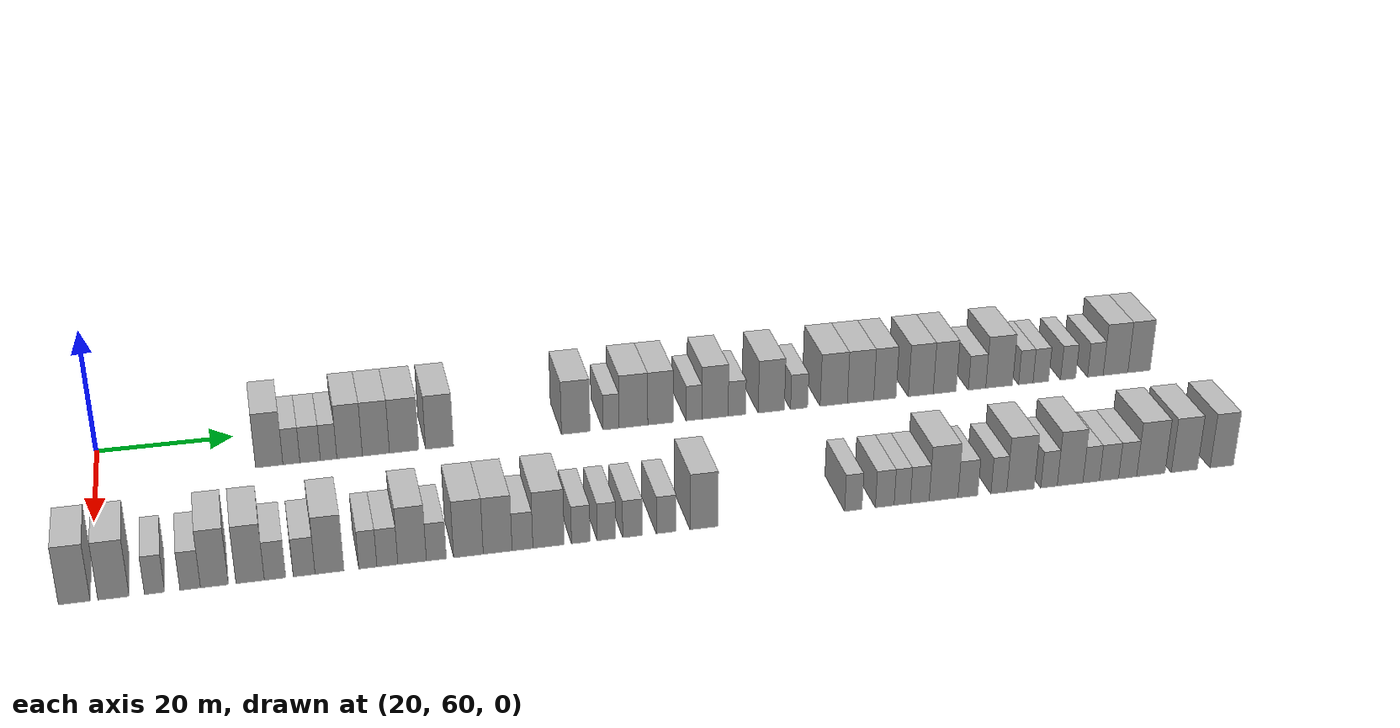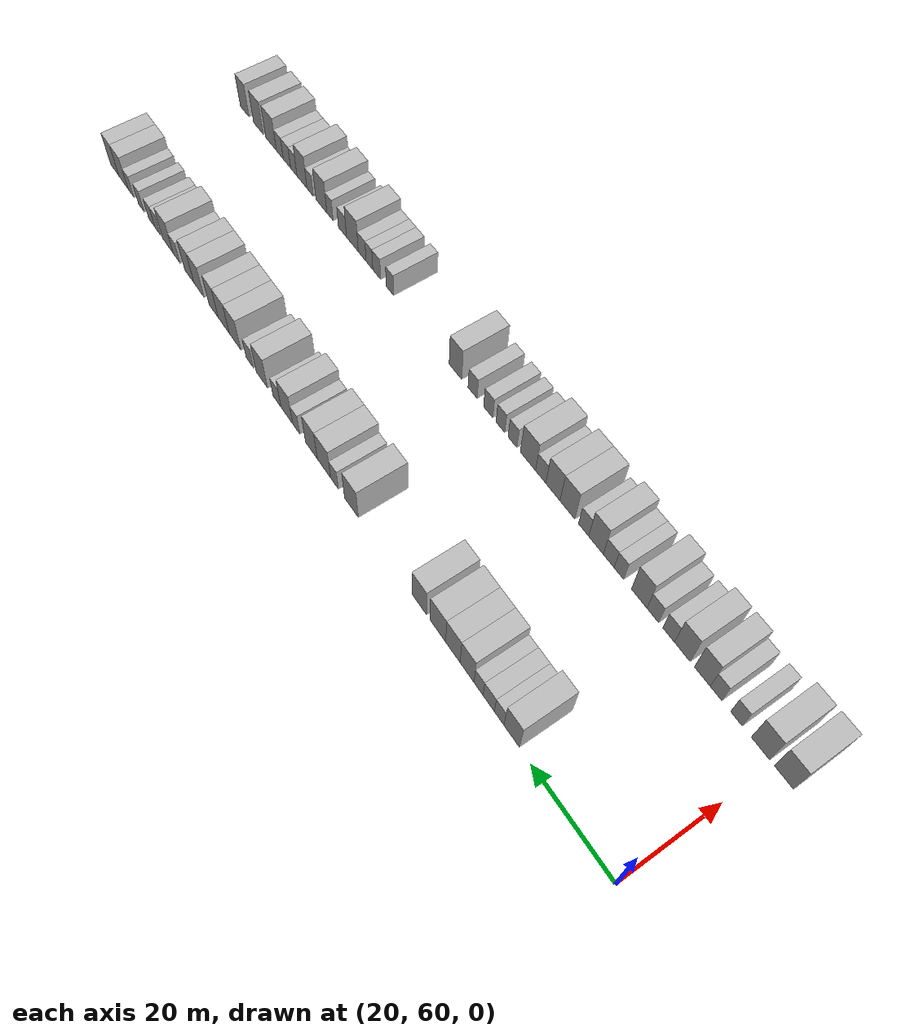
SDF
<sdf version="1.6">
 <world name="default">
  <model name="building_66">
   <static>1</static>
   <pose>25.0000 84.9210 0 0.000000 0.000000 0.000000</pose>
   <link name="link">
    <pose>0 0 4.50 0 0 0</pose>
    <collision name="collision"><geometry><box><size>10.0000 3.9785 9.0000</size></box></geometry></collision>
    <visual name="visual">
     <cast_shadows>0</cast_shadows>
     <geometry><box><size>10.0000 3.9785 9.0000</size></box></geometry>
     <material>
      <script>
       <uri>model://HANNAS_wall/materials/scripts</uri>
       <uri>model://HANNAS_wall/materials/textures</uri>
       <name>vrc/HANNAS_wall</name>
      </script>
     </material>
    </visual>
   </link>
  </model>
  <model name="building_67">
   <static>1</static>
   <pose>25.0000 88.1541 0 0.000000 0.000000 0.000000</pose>
   <link name="link">
    <pose>0 0 3.00 0 0 0</pose>
    <collision name="collision"><geometry><box><size>10.0000 2.4878 6.0000</size></box></geometry></collision>
    <visual name="visual">
     <cast_shadows>0</cast_shadows>
     <geometry><box><size>10.0000 2.4878 6.0000</size></box></geometry>
     <material>
      <script>
       <uri>model://HANNAS_wall/materials/scripts</uri>
       <uri>model://HANNAS_wall/materials/textures</uri>
       <name>vrc/HANNAS_wall</name>
      </script>
     </material>
    </visual>
   </link>
  </model>
  <model name="building_68">
   <static>1</static>
   <pose>25.0000 90.8943 0 0.000000 0.000000 0.000000</pose>
   <link name="link">
    <pose>0 0 3.00 0 0 0</pose>
    <collision name="collision"><geometry><box><size>10.0000 2.9925 6.0000</size></box></geometry></collision>
    <visual name="visual">
     <cast_shadows>0</cast_shadows>
     <geometry><box><size>10.0000 2.9925 6.0000</size></box></geometry>
     <material>
      <script>
       <uri>model://HANNAS_wall/materials/scripts</uri>
       <uri>model://HANNAS_wall/materials/textures</uri>
       <name>vrc/HANNAS_wall</name>
      </script>
     </material>
    </visual>
   </link>
  </model>
  <model name="building_69">
   <static>1</static>
   <pose>25.0000 93.6027 0 0.000000 0.000000 0.000000</pose>
   <link name="link">
    <pose>0 0 3.00 0 0 0</pose>
    <collision name="collision"><geometry><box><size>10.0000 2.4242 6.0000</size></box></geometry></collision>
    <visual name="visual">
     <cast_shadows>0</cast_shadows>
     <geometry><box><size>10.0000 2.4242 6.0000</size></box></geometry>
     <material>
      <script>
       <uri>model://HANNAS_wall/materials/scripts</uri>
       <uri>model://HANNAS_wall/materials/textures</uri>
       <name>vrc/HANNAS_wall</name>
      </script>
     </material>
    </visual>
   </link>
  </model>
  <model name="building_70">
   <static>1</static>
   <pose>25.0000 96.6988 0 0.000000 0.000000 0.000000</pose>
   <link name="link">
    <pose>0 0 4.50 0 0 0</pose>
    <collision name="collision"><geometry><box><size>10.0000 3.7680 9.0000</size></box></geometry></collision>
    <visual name="visual">
     <cast_shadows>0</cast_shadows>
     <geometry><box><size>10.0000 3.7680 9.0000</size></box></geometry>
     <material>
      <script>
       <uri>model://HANNAS_wall/materials/scripts</uri>
       <uri>model://HANNAS_wall/materials/textures</uri>
       <name>vrc/HANNAS_wall</name>
      </script>
     </material>
    </visual>
   </link>
  </model>
  <model name="building_71">
   <static>1</static>
   <pose>25.0000 100.5900 0 0.000000 0.000000 0.000000</pose>
   <link name="link">
    <pose>0 0 4.50 0 0 0</pose>
    <collision name="collision"><geometry><box><size>10.0000 4.0145 9.0000</size></box></geometry></collision>
    <visual name="visual">
     <cast_shadows>0</cast_shadows>
     <geometry><box><size>10.0000 4.0145 9.0000</size></box></geometry>
     <material>
      <script>
       <uri>model://HANNAS_wall/materials/scripts</uri>
       <uri>model://HANNAS_wall/materials/textures</uri>
       <name>vrc/HANNAS_wall</name>
      </script>
     </material>
    </visual>
   </link>
  </model>
  <model name="building_72">
   <static>1</static>
   <pose>25.0000 104.7903 0 0.000000 0.000000 0.000000</pose>
   <link name="link">
    <pose>0 0 4.50 0 0 0</pose>
    <collision name="collision"><geometry><box><size>10.0000 4.3861 9.0000</size></box></geometry></collision>
    <visual name="visual">
     <cast_shadows>0</cast_shadows>
     <geometry><box><size>10.0000 4.3861 9.0000</size></box></geometry>
     <material>
      <script>
       <uri>model://HANNAS_wall/materials/scripts</uri>
       <uri>model://HANNAS_wall/materials/textures</uri>
       <name>vrc/HANNAS_wall</name>
      </script>
     </material>
    </visual>
   </link>
  </model>
  <model name="building_73">
   <static>1</static>
   <pose>25.0000 110.0732 0 0.000000 0.000000 0.000000</pose>
   <link name="link">
    <pose>0 0 4.50 0 0 0</pose>
    <collision name="collision"><geometry><box><size>10.0000 4.1797 9.0000</size></box></geometry></collision>
    <visual name="visual">
     <cast_shadows>0</cast_shadows>
     <geometry><box><size>10.0000 4.1797 9.0000</size></box></geometry>
     <material>
      <script>
       <uri>model://HANNAS_wall/materials/scripts</uri>
       <uri>model://HANNAS_wall/materials/textures</uri>
       <name>vrc/HANNAS_wall</name>
      </script>
     </material>
    </visual>
   </link>
  </model>
  <model name="building_74">
   <static>1</static>
   <pose>25.0000 130.7508 0 0.000000 0.000000 0.000000</pose>
   <link name="link">
    <pose>0 0 4.50 0 0 0</pose>
    <collision name="collision"><geometry><box><size>10.0000 4.3918 9.0000</size></box></geometry></collision>
    <visual name="visual">
     <cast_shadows>0</cast_shadows>
     <geometry><box><size>10.0000 4.3918 9.0000</size></box></geometry>
     <material>
      <script>
       <uri>model://HANNAS_wall/materials/scripts</uri>
       <uri>model://HANNAS_wall/materials/textures</uri>
       <name>vrc/HANNAS_wall</name>
      </script>
     </material>
    </visual>
   </link>
  </model>
  <model name="building_75">
   <static>1</static>
   <pose>25.0000 136.1969 0 0.000000 0.000000 0.000000</pose>
   <link name="link">
    <pose>0 0 3.00 0 0 0</pose>
    <collision name="collision"><geometry><box><size>10.0000 2.5005 6.0000</size></box></geometry></collision>
    <visual name="visual">
     <cast_shadows>0</cast_shadows>
     <geometry><box><size>10.0000 2.5005 6.0000</size></box></geometry>
     <material>
      <script>
       <uri>model://HANNAS_wall/materials/scripts</uri>
       <uri>model://HANNAS_wall/materials/textures</uri>
       <name>vrc/HANNAS_wall</name>
      </script>
     </material>
    </visual>
   </link>
  </model>
  <model name="building_76">
   <static>1</static>
   <pose>25.0000 139.6686 0 0.000000 0.000000 0.000000</pose>
   <link name="link">
    <pose>0 0 4.50 0 0 0</pose>
    <collision name="collision"><geometry><box><size>10.0000 4.4429 9.0000</size></box></geometry></collision>
    <visual name="visual">
     <cast_shadows>0</cast_shadows>
     <geometry><box><size>10.0000 4.4429 9.0000</size></box></geometry>
     <material>
      <script>
       <uri>model://HANNAS_wall/materials/scripts</uri>
       <uri>model://HANNAS_wall/materials/textures</uri>
       <name>vrc/HANNAS_wall</name>
      </script>
     </material>
    </visual>
   </link>
  </model>
  <model name="building_77">
   <static>1</static>
   <pose>25.0000 143.8794 0 0.000000 0.000000 0.000000</pose>
   <link name="link">
    <pose>0 0 4.50 0 0 0</pose>
    <collision name="collision"><geometry><box><size>10.0000 3.9786 9.0000</size></box></geometry></collision>
    <visual name="visual">
     <cast_shadows>0</cast_shadows>
     <geometry><box><size>10.0000 3.9786 9.0000</size></box></geometry>
     <material>
      <script>
       <uri>model://HANNAS_wall/materials/scripts</uri>
       <uri>model://HANNAS_wall/materials/textures</uri>
       <name>vrc/HANNAS_wall</name>
      </script>
     </material>
    </visual>
   </link>
  </model>
  <model name="building_78">
   <static>1</static>
   <pose>25.0000 149.0896 0 0.000000 0.000000 0.000000</pose>
   <link name="link">
    <pose>0 0 3.00 0 0 0</pose>
    <collision name="collision"><geometry><box><size>10.0000 2.4418 6.0000</size></box></geometry></collision>
    <visual name="visual">
     <cast_shadows>0</cast_shadows>
     <geometry><box><size>10.0000 2.4418 6.0000</size></box></geometry>
     <material>
      <script>
       <uri>model://HANNAS_wall/materials/scripts</uri>
       <uri>model://HANNAS_wall/materials/textures</uri>
       <name>vrc/HANNAS_wall</name>
      </script>
     </material>
    </visual>
   </link>
  </model>
  <model name="building_79">
   <static>1</static>
   <pose>25.0000 152.3868 0 0.000000 0.000000 0.000000</pose>
   <link name="link">
    <pose>0 0 4.50 0 0 0</pose>
    <collision name="collision"><geometry><box><size>10.0000 4.1527 9.0000</size></box></geometry></collision>
    <visual name="visual">
     <cast_shadows>0</cast_shadows>
     <geometry><box><size>10.0000 4.1527 9.0000</size></box></geometry>
     <material>
      <script>
       <uri>model://HANNAS_wall/materials/scripts</uri>
       <uri>model://HANNAS_wall/materials/textures</uri>
       <name>vrc/HANNAS_wall</name>
      </script>
     </material>
    </visual>
   </link>
  </model>
  <model name="building_80">
   <static>1</static>
   <pose>25.0000 155.8482 0 0.000000 0.000000 0.000000</pose>
   <link name="link">
    <pose>0 0 3.00 0 0 0</pose>
    <collision name="collision"><geometry><box><size>10.0000 2.7701 6.0000</size></box></geometry></collision>
    <visual name="visual">
     <cast_shadows>0</cast_shadows>
     <geometry><box><size>10.0000 2.7701 6.0000</size></box></geometry>
     <material>
      <script>
       <uri>model://HANNAS_wall/materials/scripts</uri>
       <uri>model://HANNAS_wall/materials/textures</uri>
       <name>vrc/HANNAS_wall</name>
      </script>
     </material>
    </visual>
   </link>
  </model>
  <model name="building_81">
   <static>1</static>
   <pose>25.0000 161.3114 0 0.000000 0.000000 0.000000</pose>
   <link name="link">
    <pose>0 0 4.50 0 0 0</pose>
    <collision name="collision"><geometry><box><size>10.0000 4.1562 9.0000</size></box></geometry></collision>
    <visual name="visual">
     <cast_shadows>0</cast_shadows>
     <geometry><box><size>10.0000 4.1562 9.0000</size></box></geometry>
     <material>
      <script>
       <uri>model://HANNAS_wall/materials/scripts</uri>
       <uri>model://HANNAS_wall/materials/textures</uri>
       <name>vrc/HANNAS_wall</name>
      </script>
     </material>
    </visual>
   </link>
  </model>
  <model name="building_82">
   <static>1</static>
   <pose>25.0000 165.7562 0 0.000000 0.000000 0.000000</pose>
   <link name="link">
    <pose>0 0 3.00 0 0 0</pose>
    <collision name="collision"><geometry><box><size>10.0000 2.7334 6.0000</size></box></geometry></collision>
    <visual name="visual">
     <cast_shadows>0</cast_shadows>
     <geometry><box><size>10.0000 2.7334 6.0000</size></box></geometry>
     <material>
      <script>
       <uri>model://HANNAS_wall/materials/scripts</uri>
       <uri>model://HANNAS_wall/materials/textures</uri>
       <name>vrc/HANNAS_wall</name>
      </script>
     </material>
    </visual>
   </link>
  </model>
  <model name="building_83">
   <static>1</static>
   <pose>25.0000 171.3114 0 0.000000 0.000000 0.000000</pose>
   <link name="link">
    <pose>0 0 4.50 0 0 0</pose>
    <collision name="collision"><geometry><box><size>10.0000 4.3769 9.0000</size></box></geometry></collision>
    <visual name="visual">
     <cast_shadows>0</cast_shadows>
     <geometry><box><size>10.0000 4.3769 9.0000</size></box></geometry>
     <material>
      <script>
       <uri>model://HANNAS_wall/materials/scripts</uri>
       <uri>model://HANNAS_wall/materials/textures</uri>
       <name>vrc/HANNAS_wall</name>
      </script>
     </material>
    </visual>
   </link>
  </model>
  <model name="building_84">
   <static>1</static>
   <pose>25.0000 175.6330 0 0.000000 0.000000 0.000000</pose>
   <link name="link">
    <pose>0 0 4.50 0 0 0</pose>
    <collision name="collision"><geometry><box><size>10.0000 4.2664 9.0000</size></box></geometry></collision>
    <visual name="visual">
     <cast_shadows>0</cast_shadows>
     <geometry><box><size>10.0000 4.2664 9.0000</size></box></geometry>
     <material>
      <script>
       <uri>model://HANNAS_wall/materials/scripts</uri>
       <uri>model://HANNAS_wall/materials/textures</uri>
       <name>vrc/HANNAS_wall</name>
      </script>
     </material>
    </visual>
   </link>
  </model>
  <model name="building_85">
   <static>1</static>
   <pose>25.0000 179.5804 0 0.000000 0.000000 0.000000</pose>
   <link name="link">
    <pose>0 0 4.50 0 0 0</pose>
    <collision name="collision"><geometry><box><size>10.0000 3.6284 9.0000</size></box></geometry></collision>
    <visual name="visual">
     <cast_shadows>0</cast_shadows>
     <geometry><box><size>10.0000 3.6284 9.0000</size></box></geometry>
     <material>
      <script>
       <uri>model://HANNAS_wall/materials/scripts</uri>
       <uri>model://HANNAS_wall/materials/textures</uri>
       <name>vrc/HANNAS_wall</name>
      </script>
     </material>
    </visual>
   </link>
  </model>
  <model name="building_86">
   <static>1</static>
   <pose>25.0000 185.4361 0 0.000000 0.000000 0.000000</pose>
   <link name="link">
    <pose>0 0 4.50 0 0 0</pose>
    <collision name="collision"><geometry><box><size>10.0000 4.0831 9.0000</size></box></geometry></collision>
    <visual name="visual">
     <cast_shadows>0</cast_shadows>
     <geometry><box><size>10.0000 4.0831 9.0000</size></box></geometry>
     <material>
      <script>
       <uri>model://HANNAS_wall/materials/scripts</uri>
       <uri>model://HANNAS_wall/materials/textures</uri>
       <name>vrc/HANNAS_wall</name>
      </script>
     </material>
    </visual>
   </link>
  </model>
  <model name="building_87">
   <static>1</static>
   <pose>25.0000 189.3608 0 0.000000 0.000000 0.000000</pose>
   <link name="link">
    <pose>0 0 4.50 0 0 0</pose>
    <collision name="collision"><geometry><box><size>10.0000 3.7663 9.0000</size></box></geometry></collision>
    <visual name="visual">
     <cast_shadows>0</cast_shadows>
     <geometry><box><size>10.0000 3.7663 9.0000</size></box></geometry>
     <material>
      <script>
       <uri>model://HANNAS_wall/materials/scripts</uri>
       <uri>model://HANNAS_wall/materials/textures</uri>
       <name>vrc/HANNAS_wall</name>
      </script>
     </material>
    </visual>
   </link>
  </model>
  <model name="building_88">
   <static>1</static>
   <pose>25.0000 194.6899 0 0.000000 0.000000 0.000000</pose>
   <link name="link">
    <pose>0 0 3.00 0 0 0</pose>
    <collision name="collision"><geometry><box><size>10.0000 2.8918 6.0000</size></box></geometry></collision>
    <visual name="visual">
     <cast_shadows>0</cast_shadows>
     <geometry><box><size>10.0000 2.8918 6.0000</size></box></geometry>
     <material>
      <script>
       <uri>model://HANNAS_wall/materials/scripts</uri>
       <uri>model://HANNAS_wall/materials/textures</uri>
       <name>vrc/HANNAS_wall</name>
      </script>
     </material>
    </visual>
   </link>
  </model>
  <model name="building_89">
   <static>1</static>
   <pose>25.0000 198.3590 0 0.000000 0.000000 0.000000</pose>
   <link name="link">
    <pose>0 0 4.50 0 0 0</pose>
    <collision name="collision"><geometry><box><size>10.0000 4.4465 9.0000</size></box></geometry></collision>
    <visual name="visual">
     <cast_shadows>0</cast_shadows>
     <geometry><box><size>10.0000 4.4465 9.0000</size></box></geometry>
     <material>
      <script>
       <uri>model://HANNAS_wall/materials/scripts</uri>
       <uri>model://HANNAS_wall/materials/textures</uri>
       <name>vrc/HANNAS_wall</name>
      </script>
     </material>
    </visual>
   </link>
  </model>
  <model name="building_90">
   <static>1</static>
   <pose>25.0000 202.7858 0 0.000000 0.000000 0.000000</pose>
   <link name="link">
    <pose>0 0 3.00 0 0 0</pose>
    <collision name="collision"><geometry><box><size>10.0000 2.4072 6.0000</size></box></geometry></collision>
    <visual name="visual">
     <cast_shadows>0</cast_shadows>
     <geometry><box><size>10.0000 2.4072 6.0000</size></box></geometry>
     <material>
      <script>
       <uri>model://HANNAS_wall/materials/scripts</uri>
       <uri>model://HANNAS_wall/materials/textures</uri>
       <name>vrc/HANNAS_wall</name>
      </script>
     </material>
    </visual>
   </link>
  </model>
  <model name="building_91">
   <static>1</static>
   <pose>25.0000 205.2989 0 0.000000 0.000000 0.000000</pose>
   <link name="link">
    <pose>0 0 3.00 0 0 0</pose>
    <collision name="collision"><geometry><box><size>10.0000 2.6191 6.0000</size></box></geometry></collision>
    <visual name="visual">
     <cast_shadows>0</cast_shadows>
     <geometry><box><size>10.0000 2.6191 6.0000</size></box></geometry>
     <material>
      <script>
       <uri>model://HANNAS_wall/materials/scripts</uri>
       <uri>model://HANNAS_wall/materials/textures</uri>
       <name>vrc/HANNAS_wall</name>
      </script>
     </material>
    </visual>
   </link>
  </model>
  <model name="building_92">
   <static>1</static>
   <pose>25.0000 209.8812 0 0.000000 0.000000 0.000000</pose>
   <link name="link">
    <pose>0 0 3.00 0 0 0</pose>
    <collision name="collision"><geometry><box><size>10.0000 2.5454 6.0000</size></box></geometry></collision>
    <visual name="visual">
     <cast_shadows>0</cast_shadows>
     <geometry><box><size>10.0000 2.5454 6.0000</size></box></geometry>
     <material>
      <script>
       <uri>model://HANNAS_wall/materials/scripts</uri>
       <uri>model://HANNAS_wall/materials/textures</uri>
       <name>vrc/HANNAS_wall</name>
      </script>
     </material>
    </visual>
   </link>
  </model>
  <model name="building_93">
   <static>1</static>
   <pose>25.0000 214.4726 0 0.000000 0.000000 0.000000</pose>
   <link name="link">
    <pose>0 0 3.00 0 0 0</pose>
    <collision name="collision"><geometry><box><size>10.0000 2.6375 6.0000</size></box></geometry></collision>
    <visual name="visual">
     <cast_shadows>0</cast_shadows>
     <geometry><box><size>10.0000 2.6375 6.0000</size></box></geometry>
     <material>
      <script>
       <uri>model://HANNAS_wall/materials/scripts</uri>
       <uri>model://HANNAS_wall/materials/textures</uri>
       <name>vrc/HANNAS_wall</name>
      </script>
     </material>
    </visual>
   </link>
  </model>
  <model name="building_94">
   <static>1</static>
   <pose>25.0000 217.8817 0 0.000000 0.000000 0.000000</pose>
   <link name="link">
    <pose>0 0 4.50 0 0 0</pose>
    <collision name="collision"><geometry><box><size>10.0000 4.1807 9.0000</size></box></geometry></collision>
    <visual name="visual">
     <cast_shadows>0</cast_shadows>
     <geometry><box><size>10.0000 4.1807 9.0000</size></box></geometry>
     <material>
      <script>
       <uri>model://HANNAS_wall/materials/scripts</uri>
       <uri>model://HANNAS_wall/materials/textures</uri>
       <name>vrc/HANNAS_wall</name>
      </script>
     </material>
    </visual>
   </link>
  </model>
  <model name="building_95">
   <static>1</static>
   <pose>25.0000 221.8728 0 0.000000 0.000000 0.000000</pose>
   <link name="link">
    <pose>0 0 4.50 0 0 0</pose>
    <collision name="collision"><geometry><box><size>10.0000 3.8014 9.0000</size></box></geometry></collision>
    <visual name="visual">
     <cast_shadows>0</cast_shadows>
     <geometry><box><size>10.0000 3.8014 9.0000</size></box></geometry>
     <material>
      <script>
       <uri>model://HANNAS_wall/materials/scripts</uri>
       <uri>model://HANNAS_wall/materials/textures</uri>
       <name>vrc/HANNAS_wall</name>
      </script>
     </material>
    </visual>
   </link>
  </model>
  <model name="building_167">
   <static>1</static>
   <pose>55.0000 57.6945 0 0.000000 0.000000 0.000000</pose>
   <link name="link">
    <pose>0 0 4.50 0 0 0</pose>
    <collision name="collision"><geometry><box><size>10.0000 4.1024 9.0000</size></box></geometry></collision>
    <visual name="visual">
     <cast_shadows>0</cast_shadows>
     <geometry><box><size>10.0000 4.1024 9.0000</size></box></geometry>
     <material>
      <script>
       <uri>model://HANNAS_wall/materials/scripts</uri>
       <uri>model://HANNAS_wall/materials/textures</uri>
       <name>vrc/HANNAS_wall</name>
      </script>
     </material>
    </visual>
   </link>
  </model>
  <model name="building_168">
   <static>1</static>
   <pose>55.0000 62.7787 0 0.000000 0.000000 0.000000</pose>
   <link name="link">
    <pose>0 0 4.50 0 0 0</pose>
    <collision name="collision"><geometry><box><size>10.0000 4.0661 9.0000</size></box></geometry></collision>
    <visual name="visual">
     <cast_shadows>0</cast_shadows>
     <geometry><box><size>10.0000 4.0661 9.0000</size></box></geometry>
     <material>
      <script>
       <uri>model://HANNAS_wall/materials/scripts</uri>
       <uri>model://HANNAS_wall/materials/textures</uri>
       <name>vrc/HANNAS_wall</name>
      </script>
     </material>
    </visual>
   </link>
  </model>
  <model name="building_169">
   <static>1</static>
   <pose>55.0000 68.1337 0 0.000000 0.000000 0.000000</pose>
   <link name="link">
    <pose>0 0 3.00 0 0 0</pose>
    <collision name="collision"><geometry><box><size>10.0000 2.6439 6.0000</size></box></geometry></collision>
    <visual name="visual">
     <cast_shadows>0</cast_shadows>
     <geometry><box><size>10.0000 2.6439 6.0000</size></box></geometry>
     <material>
      <script>
       <uri>model://HANNAS_wall/materials/scripts</uri>
       <uri>model://HANNAS_wall/materials/textures</uri>
       <name>vrc/HANNAS_wall</name>
      </script>
     </material>
    </visual>
   </link>
  </model>
  <model name="building_170">
   <static>1</static>
   <pose>55.0000 72.8062 0 0.000000 0.000000 0.000000</pose>
   <link name="link">
    <pose>0 0 3.00 0 0 0</pose>
    <collision name="collision"><geometry><box><size>10.0000 2.7010 6.0000</size></box></geometry></collision>
    <visual name="visual">
     <cast_shadows>0</cast_shadows>
     <geometry><box><size>10.0000 2.7010 6.0000</size></box></geometry>
     <material>
      <script>
       <uri>model://HANNAS_wall/materials/scripts</uri>
       <uri>model://HANNAS_wall/materials/textures</uri>
       <name>vrc/HANNAS_wall</name>
      </script>
     </material>
    </visual>
   </link>
  </model>
  <model name="building_171">
   <static>1</static>
   <pose>55.0000 76.0013 0 0.000000 0.000000 0.000000</pose>
   <link name="link">
    <pose>0 0 4.50 0 0 0</pose>
    <collision name="collision"><geometry><box><size>10.0000 3.6893 9.0000</size></box></geometry></collision>
    <visual name="visual">
     <cast_shadows>0</cast_shadows>
     <geometry><box><size>10.0000 3.6893 9.0000</size></box></geometry>
     <material>
      <script>
       <uri>model://HANNAS_wall/materials/scripts</uri>
       <uri>model://HANNAS_wall/materials/textures</uri>
       <name>vrc/HANNAS_wall</name>
      </script>
     </material>
    </visual>
   </link>
  </model>
  <model name="building_172">
   <static>1</static>
   <pose>55.0000 80.7335 0 0.000000 0.000000 0.000000</pose>
   <link name="link">
    <pose>0 0 4.50 0 0 0</pose>
    <collision name="collision"><geometry><box><size>10.0000 3.7750 9.0000</size></box></geometry></collision>
    <visual name="visual">
     <cast_shadows>0</cast_shadows>
     <geometry><box><size>10.0000 3.7750 9.0000</size></box></geometry>
     <material>
      <script>
       <uri>model://HANNAS_wall/materials/scripts</uri>
       <uri>model://HANNAS_wall/materials/textures</uri>
       <name>vrc/HANNAS_wall</name>
      </script>
     </material>
    </visual>
   </link>
  </model>
  <model name="building_173">
   <static>1</static>
   <pose>55.0000 84.0565 0 0.000000 0.000000 0.000000</pose>
   <link name="link">
    <pose>0 0 3.00 0 0 0</pose>
    <collision name="collision"><geometry><box><size>10.0000 2.8710 6.0000</size></box></geometry></collision>
    <visual name="visual">
     <cast_shadows>0</cast_shadows>
     <geometry><box><size>10.0000 2.8710 6.0000</size></box></geometry>
     <material>
      <script>
       <uri>model://HANNAS_wall/materials/scripts</uri>
       <uri>model://HANNAS_wall/materials/textures</uri>
       <name>vrc/HANNAS_wall</name>
      </script>
     </material>
    </visual>
   </link>
  </model>
  <model name="building_174">
   <static>1</static>
   <pose>55.0000 87.9522 0 0.000000 0.000000 0.000000</pose>
   <link name="link">
    <pose>0 0 3.00 0 0 0</pose>
    <collision name="collision"><geometry><box><size>10.0000 2.9206 6.0000</size></box></geometry></collision>
    <visual name="visual">
     <cast_shadows>0</cast_shadows>
     <geometry><box><size>10.0000 2.9206 6.0000</size></box></geometry>
     <material>
      <script>
       <uri>model://HANNAS_wall/materials/scripts</uri>
       <uri>model://HANNAS_wall/materials/textures</uri>
       <name>vrc/HANNAS_wall</name>
      </script>
     </material>
    </visual>
   </link>
  </model>
  <model name="building_175">
   <static>1</static>
   <pose>55.0000 91.3695 0 0.000000 0.000000 0.000000</pose>
   <link name="link">
    <pose>0 0 4.50 0 0 0</pose>
    <collision name="collision"><geometry><box><size>10.0000 3.9140 9.0000</size></box></geometry></collision>
    <visual name="visual">
     <cast_shadows>0</cast_shadows>
     <geometry><box><size>10.0000 3.9140 9.0000</size></box></geometry>
     <material>
      <script>
       <uri>model://HANNAS_wall/materials/scripts</uri>
       <uri>model://HANNAS_wall/materials/textures</uri>
       <name>vrc/HANNAS_wall</name>
      </script>
     </material>
    </visual>
   </link>
  </model>
  <model name="building_176">
   <static>1</static>
   <pose>55.0000 96.5517 0 0.000000 0.000000 0.000000</pose>
   <link name="link">
    <pose>0 0 3.00 0 0 0</pose>
    <collision name="collision"><geometry><box><size>10.0000 2.4503 6.0000</size></box></geometry></collision>
    <visual name="visual">
     <cast_shadows>0</cast_shadows>
     <geometry><box><size>10.0000 2.4503 6.0000</size></box></geometry>
     <material>
      <script>
       <uri>model://HANNAS_wall/materials/scripts</uri>
       <uri>model://HANNAS_wall/materials/textures</uri>
       <name>vrc/HANNAS_wall</name>
      </script>
     </material>
    </visual>
   </link>
  </model>
  <model name="building_177">
   <static>1</static>
   <pose>55.0000 99.2036 0 0.000000 0.000000 0.000000</pose>
   <link name="link">
    <pose>0 0 3.00 0 0 0</pose>
    <collision name="collision"><geometry><box><size>10.0000 2.8536 6.0000</size></box></geometry></collision>
    <visual name="visual">
     <cast_shadows>0</cast_shadows>
     <geometry><box><size>10.0000 2.8536 6.0000</size></box></geometry>
     <material>
      <script>
       <uri>model://HANNAS_wall/materials/scripts</uri>
       <uri>model://HANNAS_wall/materials/textures</uri>
       <name>vrc/HANNAS_wall</name>
      </script>
     </material>
    </visual>
   </link>
  </model>
  <model name="building_178">
   <static>1</static>
   <pose>55.0000 102.5852 0 0.000000 0.000000 0.000000</pose>
   <link name="link">
    <pose>0 0 4.50 0 0 0</pose>
    <collision name="collision"><geometry><box><size>10.0000 3.9094 9.0000</size></box></geometry></collision>
    <visual name="visual">
     <cast_shadows>0</cast_shadows>
     <geometry><box><size>10.0000 3.9094 9.0000</size></box></geometry>
     <material>
      <script>
       <uri>model://HANNAS_wall/materials/scripts</uri>
       <uri>model://HANNAS_wall/materials/textures</uri>
       <name>vrc/HANNAS_wall</name>
      </script>
     </material>
    </visual>
   </link>
  </model>
  <model name="building_179">
   <static>1</static>
   <pose>55.0000 105.9098 0 0.000000 0.000000 0.000000</pose>
   <link name="link">
    <pose>0 0 3.00 0 0 0</pose>
    <collision name="collision"><geometry><box><size>10.0000 2.7397 6.0000</size></box></geometry></collision>
    <visual name="visual">
     <cast_shadows>0</cast_shadows>
     <geometry><box><size>10.0000 2.7397 6.0000</size></box></geometry>
     <material>
      <script>
       <uri>model://HANNAS_wall/materials/scripts</uri>
       <uri>model://HANNAS_wall/materials/textures</uri>
       <name>vrc/HANNAS_wall</name>
      </script>
     </material>
    </visual>
   </link>
  </model>
  <model name="building_180">
   <static>1</static>
   <pose>55.0000 110.3261 0 0.000000 0.000000 0.000000</pose>
   <link name="link">
    <pose>0 0 4.50 0 0 0</pose>
    <collision name="collision"><geometry><box><size>10.0000 4.0930 9.0000</size></box></geometry></collision>
    <visual name="visual">
     <cast_shadows>0</cast_shadows>
     <geometry><box><size>10.0000 4.0930 9.0000</size></box></geometry>
     <material>
      <script>
       <uri>model://HANNAS_wall/materials/scripts</uri>
       <uri>model://HANNAS_wall/materials/textures</uri>
       <name>vrc/HANNAS_wall</name>
      </script>
     </material>
    </visual>
   </link>
  </model>
  <model name="building_181">
   <static>1</static>
   <pose>55.0000 114.3791 0 0.000000 0.000000 0.000000</pose>
   <link name="link">
    <pose>0 0 4.50 0 0 0</pose>
    <collision name="collision"><geometry><box><size>10.0000 4.0128 9.0000</size></box></geometry></collision>
    <visual name="visual">
     <cast_shadows>0</cast_shadows>
     <geometry><box><size>10.0000 4.0128 9.0000</size></box></geometry>
     <material>
      <script>
       <uri>model://HANNAS_wall/materials/scripts</uri>
       <uri>model://HANNAS_wall/materials/textures</uri>
       <name>vrc/HANNAS_wall</name>
      </script>
     </material>
    </visual>
   </link>
  </model>
  <model name="building_182">
   <static>1</static>
   <pose>55.0000 117.8353 0 0.000000 0.000000 0.000000</pose>
   <link name="link">
    <pose>0 0 3.00 0 0 0</pose>
    <collision name="collision"><geometry><box><size>10.0000 2.8996 6.0000</size></box></geometry></collision>
    <visual name="visual">
     <cast_shadows>0</cast_shadows>
     <geometry><box><size>10.0000 2.8996 6.0000</size></box></geometry>
     <material>
      <script>
       <uri>model://HANNAS_wall/materials/scripts</uri>
       <uri>model://HANNAS_wall/materials/textures</uri>
       <name>vrc/HANNAS_wall</name>
      </script>
     </material>
    </visual>
   </link>
  </model>
  <model name="building_183">
   <static>1</static>
   <pose>55.0000 121.4937 0 0.000000 0.000000 0.000000</pose>
   <link name="link">
    <pose>0 0 4.50 0 0 0</pose>
    <collision name="collision"><geometry><box><size>10.0000 4.4171 9.0000</size></box></geometry></collision>
    <visual name="visual">
     <cast_shadows>0</cast_shadows>
     <geometry><box><size>10.0000 4.4171 9.0000</size></box></geometry>
     <material>
      <script>
       <uri>model://HANNAS_wall/materials/scripts</uri>
       <uri>model://HANNAS_wall/materials/textures</uri>
       <name>vrc/HANNAS_wall</name>
      </script>
     </material>
    </visual>
   </link>
  </model>
  <model name="building_184">
   <static>1</static>
   <pose>55.0000 126.0156 0 0.000000 0.000000 0.000000</pose>
   <link name="link">
    <pose>0 0 3.00 0 0 0</pose>
    <collision name="collision"><geometry><box><size>10.0000 2.6268 6.0000</size></box></geometry></collision>
    <visual name="visual">
     <cast_shadows>0</cast_shadows>
     <geometry><box><size>10.0000 2.6268 6.0000</size></box></geometry>
     <material>
      <script>
       <uri>model://HANNAS_wall/materials/scripts</uri>
       <uri>model://HANNAS_wall/materials/textures</uri>
       <name>vrc/HANNAS_wall</name>
      </script>
     </material>
    </visual>
   </link>
  </model>
  <model name="building_185">
   <static>1</static>
   <pose>55.0000 129.6344 0 0.000000 0.000000 0.000000</pose>
   <link name="link">
    <pose>0 0 3.00 0 0 0</pose>
    <collision name="collision"><geometry><box><size>10.0000 2.6108 6.0000</size></box></geometry></collision>
    <visual name="visual">
     <cast_shadows>0</cast_shadows>
     <geometry><box><size>10.0000 2.6108 6.0000</size></box></geometry>
     <material>
      <script>
       <uri>model://HANNAS_wall/materials/scripts</uri>
       <uri>model://HANNAS_wall/materials/textures</uri>
       <name>vrc/HANNAS_wall</name>
      </script>
     </material>
    </visual>
   </link>
  </model>
  <model name="building_186">
   <static>1</static>
   <pose>55.0000 133.3300 0 0.000000 0.000000 0.000000</pose>
   <link name="link">
    <pose>0 0 3.00 0 0 0</pose>
    <collision name="collision"><geometry><box><size>10.0000 2.7804 6.0000</size></box></geometry></collision>
    <visual name="visual">
     <cast_shadows>0</cast_shadows>
     <geometry><box><size>10.0000 2.7804 6.0000</size></box></geometry>
     <material>
      <script>
       <uri>model://HANNAS_wall/materials/scripts</uri>
       <uri>model://HANNAS_wall/materials/textures</uri>
       <name>vrc/HANNAS_wall</name>
      </script>
     </material>
    </visual>
   </link>
  </model>
  <model name="building_187">
   <static>1</static>
   <pose>55.0000 138.1407 0 0.000000 0.000000 0.000000</pose>
   <link name="link">
    <pose>0 0 3.00 0 0 0</pose>
    <collision name="collision"><geometry><box><size>10.0000 2.8410 6.0000</size></box></geometry></collision>
    <visual name="visual">
     <cast_shadows>0</cast_shadows>
     <geometry><box><size>10.0000 2.8410 6.0000</size></box></geometry>
     <material>
      <script>
       <uri>model://HANNAS_wall/materials/scripts</uri>
       <uri>model://HANNAS_wall/materials/textures</uri>
       <name>vrc/HANNAS_wall</name>
      </script>
     </material>
    </visual>
   </link>
  </model>
  <model name="building_188">
   <static>1</static>
   <pose>55.0000 143.5503 0 0.000000 0.000000 0.000000</pose>
   <link name="link">
    <pose>0 0 4.50 0 0 0</pose>
    <collision name="collision"><geometry><box><size>10.0000 3.9782 9.0000</size></box></geometry></collision>
    <visual name="visual">
     <cast_shadows>0</cast_shadows>
     <geometry><box><size>10.0000 3.9782 9.0000</size></box></geometry>
     <material>
      <script>
       <uri>model://HANNAS_wall/materials/scripts</uri>
       <uri>model://HANNAS_wall/materials/textures</uri>
       <name>vrc/HANNAS_wall</name>
      </script>
     </material>
    </visual>
   </link>
  </model>
  <model name="building_189">
   <static>1</static>
   <pose>55.0000 165.3817 0 0.000000 0.000000 0.000000</pose>
   <link name="link">
    <pose>0 0 3.00 0 0 0</pose>
    <collision name="collision"><geometry><box><size>10.0000 2.5616 6.0000</size></box></geometry></collision>
    <visual name="visual">
     <cast_shadows>0</cast_shadows>
     <geometry><box><size>10.0000 2.5616 6.0000</size></box></geometry>
     <material>
      <script>
       <uri>model://HANNAS_wall/materials/scripts</uri>
       <uri>model://HANNAS_wall/materials/textures</uri>
       <name>vrc/HANNAS_wall</name>
      </script>
     </material>
    </visual>
   </link>
  </model>
  <model name="building_190">
   <static>1</static>
   <pose>55.0000 170.0568 0 0.000000 0.000000 0.000000</pose>
   <link name="link">
    <pose>0 0 3.00 0 0 0</pose>
    <collision name="collision"><geometry><box><size>10.0000 2.7886 6.0000</size></box></geometry></collision>
    <visual name="visual">
     <cast_shadows>0</cast_shadows>
     <geometry><box><size>10.0000 2.7886 6.0000</size></box></geometry>
     <material>
      <script>
       <uri>model://HANNAS_wall/materials/scripts</uri>
       <uri>model://HANNAS_wall/materials/textures</uri>
       <name>vrc/HANNAS_wall</name>
      </script>
     </material>
    </visual>
   </link>
  </model>
  <model name="building_191">
   <static>1</static>
   <pose>55.0000 172.6611 0 0.000000 0.000000 0.000000</pose>
   <link name="link">
    <pose>0 0 3.00 0 0 0</pose>
    <collision name="collision"><geometry><box><size>10.0000 2.4199 6.0000</size></box></geometry></collision>
    <visual name="visual">
     <cast_shadows>0</cast_shadows>
     <geometry><box><size>10.0000 2.4199 6.0000</size></box></geometry>
     <material>
      <script>
       <uri>model://HANNAS_wall/materials/scripts</uri>
       <uri>model://HANNAS_wall/materials/textures</uri>
       <name>vrc/HANNAS_wall</name>
      </script>
     </material>
    </visual>
   </link>
  </model>
  <model name="building_192">
   <static>1</static>
   <pose>55.0000 175.2833 0 0.000000 0.000000 0.000000</pose>
   <link name="link">
    <pose>0 0 3.00 0 0 0</pose>
    <collision name="collision"><geometry><box><size>10.0000 2.8246 6.0000</size></box></geometry></collision>
    <visual name="visual">
     <cast_shadows>0</cast_shadows>
     <geometry><box><size>10.0000 2.8246 6.0000</size></box></geometry>
     <material>
      <script>
       <uri>model://HANNAS_wall/materials/scripts</uri>
       <uri>model://HANNAS_wall/materials/textures</uri>
       <name>vrc/HANNAS_wall</name>
      </script>
     </material>
    </visual>
   </link>
  </model>
  <model name="building_193">
   <static>1</static>
   <pose>55.0000 178.8643 0 0.000000 0.000000 0.000000</pose>
   <link name="link">
    <pose>0 0 4.50 0 0 0</pose>
    <collision name="collision"><geometry><box><size>10.0000 4.3374 9.0000</size></box></geometry></collision>
    <visual name="visual">
     <cast_shadows>0</cast_shadows>
     <geometry><box><size>10.0000 4.3374 9.0000</size></box></geometry>
     <material>
      <script>
       <uri>model://HANNAS_wall/materials/scripts</uri>
       <uri>model://HANNAS_wall/materials/textures</uri>
       <name>vrc/HANNAS_wall</name>
      </script>
     </material>
    </visual>
   </link>
  </model>
  <model name="building_194">
   <static>1</static>
   <pose>55.0000 182.5323 0 0.000000 0.000000 0.000000</pose>
   <link name="link">
    <pose>0 0 3.00 0 0 0</pose>
    <collision name="collision"><geometry><box><size>10.0000 2.9985 6.0000</size></box></geometry></collision>
    <visual name="visual">
     <cast_shadows>0</cast_shadows>
     <geometry><box><size>10.0000 2.9985 6.0000</size></box></geometry>
     <material>
      <script>
       <uri>model://HANNAS_wall/materials/scripts</uri>
       <uri>model://HANNAS_wall/materials/textures</uri>
       <name>vrc/HANNAS_wall</name>
      </script>
     </material>
    </visual>
   </link>
  </model>
  <model name="building_195">
   <static>1</static>
   <pose>55.0000 187.2330 0 0.000000 0.000000 0.000000</pose>
   <link name="link">
    <pose>0 0 3.00 0 0 0</pose>
    <collision name="collision"><geometry><box><size>10.0000 2.4029 6.0000</size></box></geometry></collision>
    <visual name="visual">
     <cast_shadows>0</cast_shadows>
     <geometry><box><size>10.0000 2.4029 6.0000</size></box></geometry>
     <material>
      <script>
       <uri>model://HANNAS_wall/materials/scripts</uri>
       <uri>model://HANNAS_wall/materials/textures</uri>
       <name>vrc/HANNAS_wall</name>
      </script>
     </material>
    </visual>
   </link>
  </model>
  <model name="building_196">
   <static>1</static>
   <pose>55.0000 190.5406 0 0.000000 0.000000 0.000000</pose>
   <link name="link">
    <pose>0 0 4.50 0 0 0</pose>
    <collision name="collision"><geometry><box><size>10.0000 4.2122 9.0000</size></box></geometry></collision>
    <visual name="visual">
     <cast_shadows>0</cast_shadows>
     <geometry><box><size>10.0000 4.2122 9.0000</size></box></geometry>
     <material>
      <script>
       <uri>model://HANNAS_wall/materials/scripts</uri>
       <uri>model://HANNAS_wall/materials/textures</uri>
       <name>vrc/HANNAS_wall</name>
      </script>
     </material>
    </visual>
   </link>
  </model>
  <model name="building_197">
   <static>1</static>
   <pose>55.0000 194.9078 0 0.000000 0.000000 0.000000</pose>
   <link name="link">
    <pose>0 0 3.00 0 0 0</pose>
    <collision name="collision"><geometry><box><size>10.0000 2.5222 6.0000</size></box></geometry></collision>
    <visual name="visual">
     <cast_shadows>0</cast_shadows>
     <geometry><box><size>10.0000 2.5222 6.0000</size></box></geometry>
     <material>
      <script>
       <uri>model://HANNAS_wall/materials/scripts</uri>
       <uri>model://HANNAS_wall/materials/textures</uri>
       <name>vrc/HANNAS_wall</name>
      </script>
     </material>
    </visual>
   </link>
  </model>
  <model name="building_198">
   <static>1</static>
   <pose>55.0000 198.1498 0 0.000000 0.000000 0.000000</pose>
   <link name="link">
    <pose>0 0 4.50 0 0 0</pose>
    <collision name="collision"><geometry><box><size>10.0000 3.9617 9.0000</size></box></geometry></collision>
    <visual name="visual">
     <cast_shadows>0</cast_shadows>
     <geometry><box><size>10.0000 3.9617 9.0000</size></box></geometry>
     <material>
      <script>
       <uri>model://HANNAS_wall/materials/scripts</uri>
       <uri>model://HANNAS_wall/materials/textures</uri>
       <name>vrc/HANNAS_wall</name>
      </script>
     </material>
    </visual>
   </link>
  </model>
  <model name="building_199">
   <static>1</static>
   <pose>55.0000 201.4036 0 0.000000 0.000000 0.000000</pose>
   <link name="link">
    <pose>0 0 3.00 0 0 0</pose>
    <collision name="collision"><geometry><box><size>10.0000 2.5461 6.0000</size></box></geometry></collision>
    <visual name="visual">
     <cast_shadows>0</cast_shadows>
     <geometry><box><size>10.0000 2.5461 6.0000</size></box></geometry>
     <material>
      <script>
       <uri>model://HANNAS_wall/materials/scripts</uri>
       <uri>model://HANNAS_wall/materials/textures</uri>
       <name>vrc/HANNAS_wall</name>
      </script>
     </material>
    </visual>
   </link>
  </model>
  <model name="building_200">
   <static>1</static>
   <pose>55.0000 204.1668 0 0.000000 0.000000 0.000000</pose>
   <link name="link">
    <pose>0 0 3.00 0 0 0</pose>
    <collision name="collision"><geometry><box><size>10.0000 2.9802 6.0000</size></box></geometry></collision>
    <visual name="visual">
     <cast_shadows>0</cast_shadows>
     <geometry><box><size>10.0000 2.9802 6.0000</size></box></geometry>
     <material>
      <script>
       <uri>model://HANNAS_wall/materials/scripts</uri>
       <uri>model://HANNAS_wall/materials/textures</uri>
       <name>vrc/HANNAS_wall</name>
      </script>
     </material>
    </visual>
   </link>
  </model>
  <model name="building_201">
   <static>1</static>
   <pose>55.0000 207.0700 0 0.000000 0.000000 0.000000</pose>
   <link name="link">
    <pose>0 0 3.00 0 0 0</pose>
    <collision name="collision"><geometry><box><size>10.0000 2.8263 6.0000</size></box></geometry></collision>
    <visual name="visual">
     <cast_shadows>0</cast_shadows>
     <geometry><box><size>10.0000 2.8263 6.0000</size></box></geometry>
     <material>
      <script>
       <uri>model://HANNAS_wall/materials/scripts</uri>
       <uri>model://HANNAS_wall/materials/textures</uri>
       <name>vrc/HANNAS_wall</name>
      </script>
     </material>
    </visual>
   </link>
  </model>
  <model name="building_202">
   <static>1</static>
   <pose>55.0000 210.6975 0 0.000000 0.000000 0.000000</pose>
   <link name="link">
    <pose>0 0 4.50 0 0 0</pose>
    <collision name="collision"><geometry><box><size>10.0000 4.4287 9.0000</size></box></geometry></collision>
    <visual name="visual">
     <cast_shadows>0</cast_shadows>
     <geometry><box><size>10.0000 4.4287 9.0000</size></box></geometry>
     <material>
      <script>
       <uri>model://HANNAS_wall/materials/scripts</uri>
       <uri>model://HANNAS_wall/materials/textures</uri>
       <name>vrc/HANNAS_wall</name>
      </script>
     </material>
    </visual>
   </link>
  </model>
  <model name="building_203">
   <static>1</static>
   <pose>55.0000 215.9666 0 0.000000 0.000000 0.000000</pose>
   <link name="link">
    <pose>0 0 4.50 0 0 0</pose>
    <collision name="collision"><geometry><box><size>10.0000 4.1095 9.0000</size></box></geometry></collision>
    <visual name="visual">
     <cast_shadows>0</cast_shadows>
     <geometry><box><size>10.0000 4.1095 9.0000</size></box></geometry>
     <material>
      <script>
       <uri>model://HANNAS_wall/materials/scripts</uri>
       <uri>model://HANNAS_wall/materials/textures</uri>
       <name>vrc/HANNAS_wall</name>
      </script>
     </material>
    </visual>
   </link>
  </model>
  <model name="building_204">
   <static>1</static>
   <pose>55.0000 221.8765 0 0.000000 0.000000 0.000000</pose>
   <link name="link">
    <pose>0 0 4.50 0 0 0</pose>
    <collision name="collision"><geometry><box><size>10.0000 3.7104 9.0000</size></box></geometry></collision>
    <visual name="visual">
     <cast_shadows>0</cast_shadows>
     <geometry><box><size>10.0000 3.7104 9.0000</size></box></geometry>
     <material>
      <script>
       <uri>model://HANNAS_wall/materials/scripts</uri>
       <uri>model://HANNAS_wall/materials/textures</uri>
       <name>vrc/HANNAS_wall</name>
      </script>
     </material>
    </visual>
   </link>
  </model>
 </world>
</sdf>
